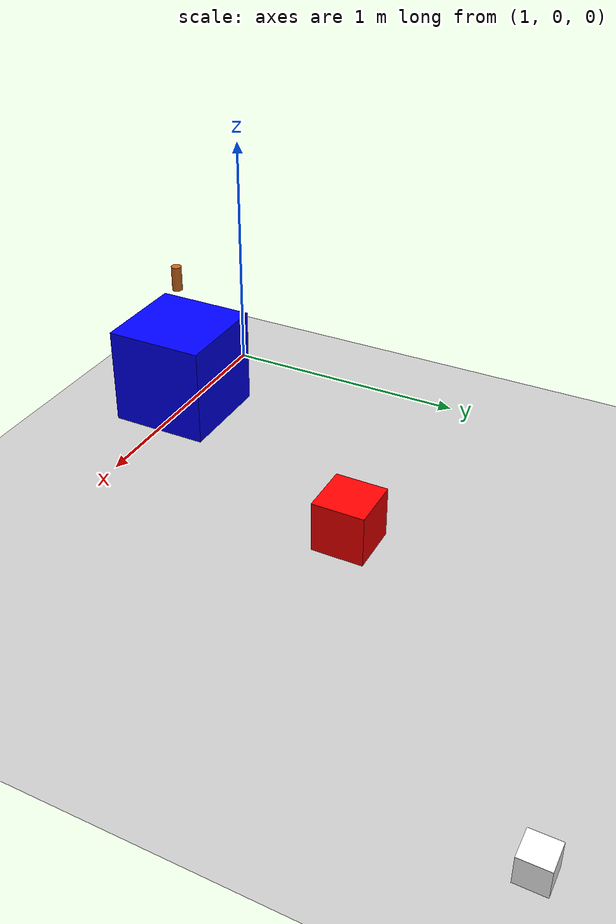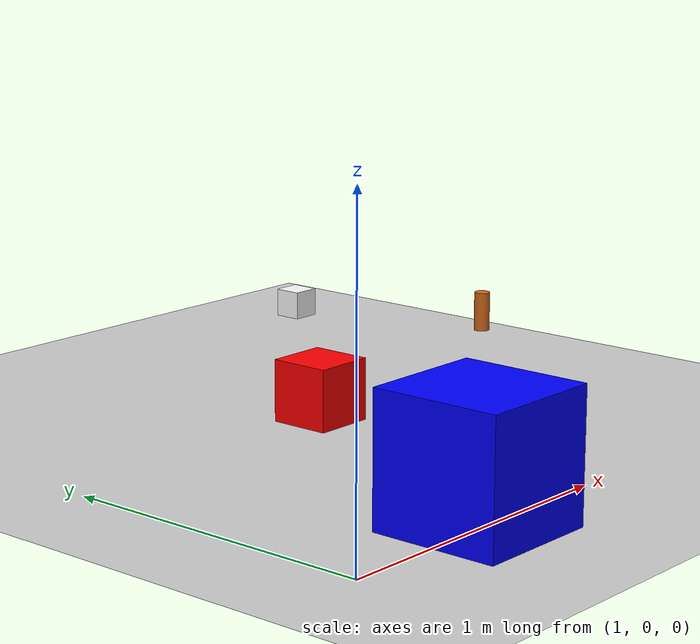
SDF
<sdf version="1.6">
 <world name="fetch_world">
  <include><uri>model://ground_plane</uri></include>
  <include><uri>model://sun</uri></include>
  <include><uri>model://wood_cube_10cm</uri><pose>3 2 0 0 0 0</pose></include>
  <model name="red_cube">
   <pose>2 1 0.1 0 0 0</pose>
   <static>true</static>
   <link name="link">
    <visual name="visual">
     <geometry><box><size>0.2 0.2 0.2</size></box></geometry>
     <material><ambient>1 0 0 1</ambient><diffuse>1 0 0 1</diffuse></material>
    </visual>
    <collision name="collision"><geometry><box><size>0.2 0.2 0.2</size></box></geometry></collision>
   </link>
  </model>
  <model name="blue_cube">
   <pose>1.5 0 0.2 0 0 0</pose>
   <static>true</static>
   <link name="link">
    <visual name="visual">
     <geometry><box><size>0.4 0.4 0.4</size></box></geometry>
     <material><ambient>0 0 1 1</ambient><diffuse>0 0 1 1</diffuse></material>
    </visual>
    <collision name="collision"><geometry><box><size>0.4 0.4 0.4</size></box></geometry></collision>
   </link>
  </model>
  <model name="custom_cylinder">
   <pose>1.5 0 0.6 0 0 0</pose>
   <static>false</static>
   <link name="link">
    <inertial><mass>0.5</mass><inertia><ixx>0.001</ixx><iyy>0.001</iyy><izz>0.001</izz></inertia></inertial>
    <visual name="visual">
     <geometry><cylinder><radius>0.02</radius><length>0.1</length></cylinder></geometry>
     <material><ambient>0.8 0.4 0.1 1</ambient><diffuse>0.8 0.4 0.1 1</diffuse></material>
    </visual>
    <collision name="collision">
     <geometry><cylinder><radius>0.02</radius><length>0.1</length></cylinder></geometry>
    </collision>
   </link>
  </model>
 </world>
</sdf>

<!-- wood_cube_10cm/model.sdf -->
<sdf version="1.5">
  <model name="wood_cube_10cm">
    <link name="link">
      <pose>0 0 0.05 0 0 0</pose>
      <inertial>
        <mass>0.5167</mass>
        <inertia>
          <ixx>0.0008611666666666669</ixx>
          <ixy>0</ixy>
          <ixz>0</ixz>
          <iyy>0.0008611666666666669</iyy>
          <iyz>0</iyz>
          <izz>0.0008611666666666669</izz>
        </inertia>
      </inertial>

      <collision name="collision">
        <geometry>
          <box>
            <size>0.1 0.1 0.1</size>
          </box>
        </geometry>
        <surface>
          <contact>
            <!-- Red Pine coefficients for longitudinal axis of the wood
                 according to:
                 http://www.fpl.fs.fed.us/documnts/fplgtr/fplgtr113/ch04.pdf -->
            <poissons_ratio>0.347</poissons_ratio>
            <elastic_modulus>8.8e+09</elastic_modulus>
            <ode>
              <kp>100000</kp>
              <kd>100</kd>
              <max_vel>100.0</max_vel>
              <min_depth>0.001</min_depth>
            </ode>
          </contact>
          <friction>
            <torsional>
              <coefficient>1.0</coefficient>
              <use_patch_radius>0</use_patch_radius>
              <surface_radius>0.01</surface_radius>
            </torsional>
          </friction>
        </surface>
      </collision>

      <visual name="visual">
        <geometry>
          <box>
            <size>0.1 0.1 0.1</size>
          </box>
        </geometry>
        <material><diffuse>1 1 1 1</diffuse><specular>0.1 0.1 0.1 1</specular></material>
      </visual>

    </link>
  </model>
</sdf>
